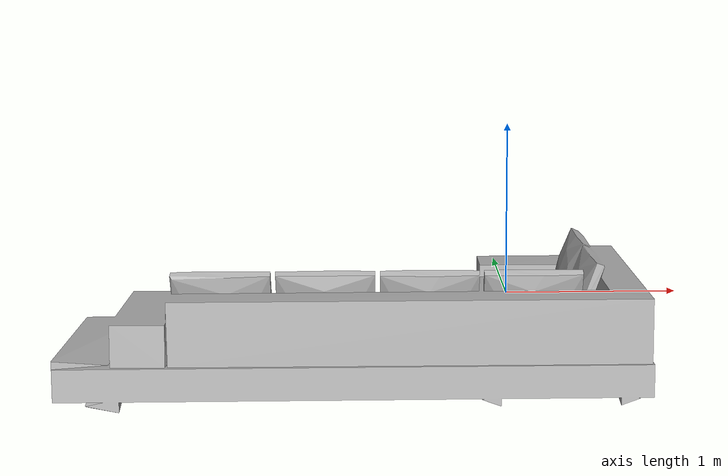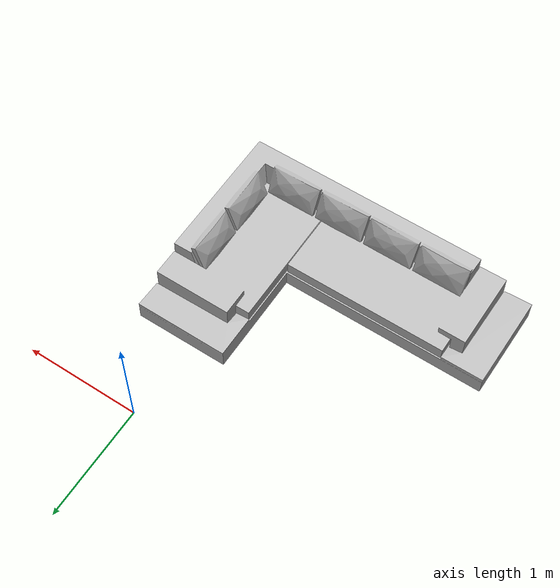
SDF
<?xml version="1.0" ?>
<sdf version="1.5">
  <model name="unit-sofa">
    <static>true</static>
    <link name="link">
      <collision name='collision_1'>
            <pose>-1.245 -1.985 0.2635 0 0 0 0</pose>
            <geometry>
              <box>
              <size>1.77 0.809 0.497</size>
            </box>
          </geometry>
      </collision>
      <collision name='collision_2'>
        <pose>0.0 -1.1 0.2635 0 0 0</pose>
        <geometry>
              <box>
              <size>0.902 0.809 0.497</size>
            </box>
          </geometry>
     </collision>
      <visual name="visual">
        <cast_shadows>true</cast_shadows>
        <pose>0.0 0.0 0.015 0 0 0 0</pose>
        <geometry>
            <mesh>
                <uri>model://sofa/meshes/sofa.dae</uri>
            </mesh>
        </geometry>
      </visual>
    </link>
  </model>
</sdf>
